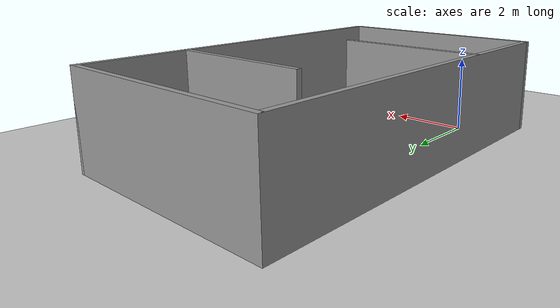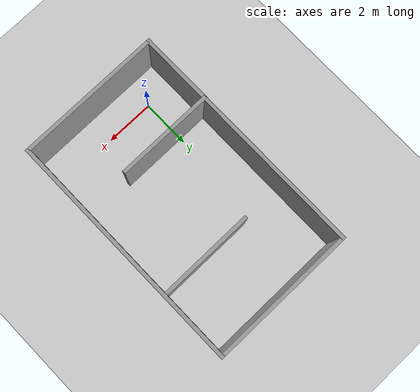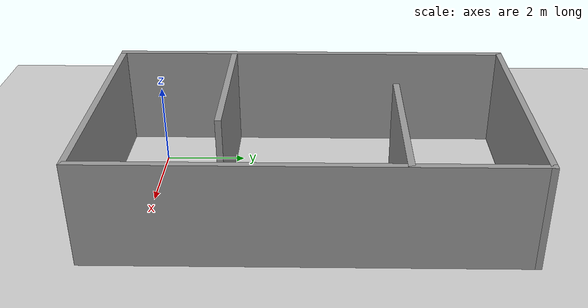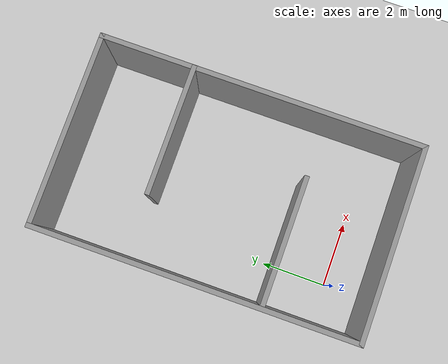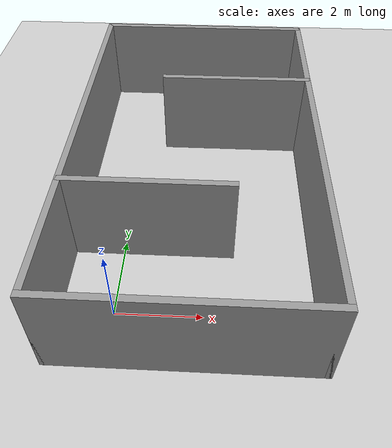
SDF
<sdf version="1.7">
 <world name="default">
  <light name="sun" type="directional">
   <pose>0 0 10 0 -0 0</pose>
   <diffuse>0.8 0.8 0.8 1</diffuse>
   <specular>0.2 0.2 0.2 1</specular>
   <attenuation>
    <range>1000</range>
    <constant>0.9</constant>
    <linear>0.01</linear>
    <quadratic>0.001</quadratic>
   </attenuation>
   <direction>-0.5 0.1 -0.9</direction>
   <spot><inner_angle>0</inner_angle><outer_angle>0</outer_angle><falloff>0</falloff></spot>
  </light>
  <model name="ground_plane">
   <static>1</static>
   <link name="link">
    <collision name="collision">
     <geometry><plane><normal>0 0 1</normal><size>100 100</size></plane></geometry>
     <surface><friction><ode><mu>100</mu><mu2>50</mu2></ode></friction></surface>
    </collision>
    <visual name="visual">
     <cast_shadows>0</cast_shadows>
     <geometry><plane><normal>0 0 1</normal><size>100 100</size></plane></geometry>
     <material>
      <script><uri>file://media/materials/scripts/gazebo.material</uri><name>Gazebo/Grey</name></script>
     </material>
    </visual>
   </link>
  </model>
  <gravity>0 0 -9.8</gravity>
  <magnetic_field>6e-06 2.3e-05 -4.2e-05</magnetic_field>
  <atmosphere type="adiabatic"/>
  <physics type="ode">
   <max_step_size>0.001</max_step_size>
   <real_time_factor>1</real_time_factor>
   <real_time_update_rate>1000</real_time_update_rate>
  </physics>
  <scene><ambient>0.4 0.4 0.4 1</ambient><background>0.7 0.7 0.7 1</background><shadows>1</shadows></scene>
  <spherical_coordinates>
   <surface_model>EARTH_WGS84</surface_model>
   <latitude_deg>0</latitude_deg>
   <longitude_deg>0</longitude_deg>
   <elevation>0</elevation>
   <heading_deg>0</heading_deg>
  </spherical_coordinates>
  <model name="maze_room">
   <pose>1.65804 3.75767 0 0 -0 0</pose>
   <link name="Wall_0">
    <collision name="Wall_0_Collision">
     <geometry><box><size>6 0.15 2.5</size></box></geometry>
     <pose>0 0 1.25 0 -0 0</pose>
    </collision>
    <visual name="Wall_0_Visual">
     <pose>0 0 1.25 0 -0 0</pose>
     <geometry><box><size>6 0.15 2.5</size></box></geometry>
     <material>
      <script><uri>file://media/materials/scripts/gazebo.material</uri><name>Gazebo/Grey</name></script>
      <ambient>1 1 1 1</ambient>
     </material>
     <meta><layer>0</layer></meta>
    </visual>
    <pose>0 -4.925 0 0 -0 0</pose>
   </link>
   <link name="Wall_1">
    <collision name="Wall_1_Collision">
     <geometry><box><size>10 0.15 2.5</size></box></geometry>
     <pose>0 0 1.25 0 -0 0</pose>
    </collision>
    <visual name="Wall_1_Visual">
     <pose>0 0 1.25 0 -0 0</pose>
     <geometry><box><size>10 0.15 2.5</size></box></geometry>
     <material>
      <script><uri>file://media/materials/scripts/gazebo.material</uri><name>Gazebo/Grey</name></script>
      <ambient>1 1 1 1</ambient>
     </material>
     <meta><layer>0</layer></meta>
    </visual>
    <pose>2.925 -0 0 0 -0 1.5708</pose>
   </link>
   <link name="Wall_13">
    <collision name="Wall_13_Collision">
     <geometry><box><size>4 0.15 2.5</size></box></geometry>
     <pose>0 0 1.25 0 -0 0</pose>
    </collision>
    <visual name="Wall_13_Visual">
     <pose>0 0 1.25 0 -0 0</pose>
     <geometry><box><size>4 0.15 2.5</size></box></geometry>
     <material>
      <script><uri>file://media/materials/scripts/gazebo.material</uri><name>Gazebo/Grey</name></script>
      <ambient>1 1 1 1</ambient>
     </material>
     <meta><layer>0</layer></meta>
    </visual>
    <pose>-0.981261 -2.00981 0 0 -0 0</pose>
   </link>
   <link name="Wall_17">
    <collision name="Wall_17_Collision">
     <geometry><box><size>4 0.15 2.5</size></box></geometry>
     <pose>0 0 1.25 0 -0 0</pose>
    </collision>
    <visual name="Wall_17_Visual">
     <pose>0 0 1.25 0 -0 0</pose>
     <geometry><box><size>4 0.15 2.5</size></box></geometry>
     <material>
      <script><uri>file://media/materials/scripts/gazebo.material</uri><name>Gazebo/Grey</name></script>
      <ambient>1 1 1 1</ambient>
     </material>
     <meta><layer>0</layer></meta>
    </visual>
    <pose>0.994183 2.08662 0 0 -0 3.14159</pose>
   </link>
   <link name="Wall_5">
    <collision name="Wall_5_Collision">
     <geometry><box><size>10 0.15 2.5</size></box></geometry>
     <pose>0 0 1.25 0 -0 0</pose>
    </collision>
    <visual name="Wall_5_Visual">
     <pose>0 0 1.25 0 -0 0</pose>
     <geometry><box><size>10 0.15 2.5</size></box></geometry>
     <material>
      <script><uri>file://media/materials/scripts/gazebo.material</uri><name>Gazebo/Grey</name></script>
      <ambient>1 1 1 1</ambient>
     </material>
     <meta><layer>0</layer></meta>
    </visual>
    <pose>-2.925 -0 0 0 -0 1.5708</pose>
   </link>
   <link name="Wall_6">
    <collision name="Wall_6_Collision">
     <geometry><box><size>6 0.15 2.5</size></box></geometry>
     <pose>0 0 1.25 0 -0 0</pose>
    </collision>
    <visual name="Wall_6_Visual">
     <pose>0 0 1.25 0 -0 0</pose>
     <geometry><box><size>6 0.15 2.5</size></box></geometry>
     <material>
      <script><uri>file://media/materials/scripts/gazebo.material</uri><name>Gazebo/Grey</name></script>
      <ambient>1 1 1 1</ambient>
     </material>
     <meta><layer>0</layer></meta>
    </visual>
    <pose>0 4.925 0 0 -0 0</pose>
   </link>
   <static>1</static>
  </model>
 </world>
</sdf>
